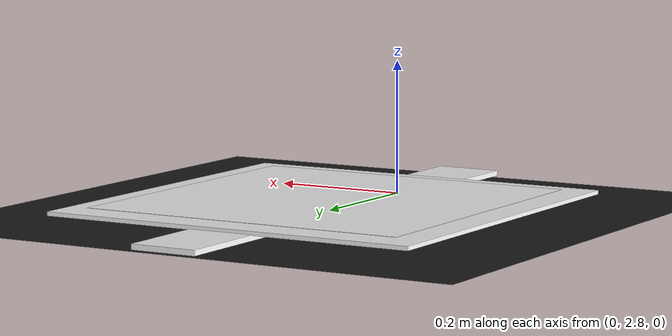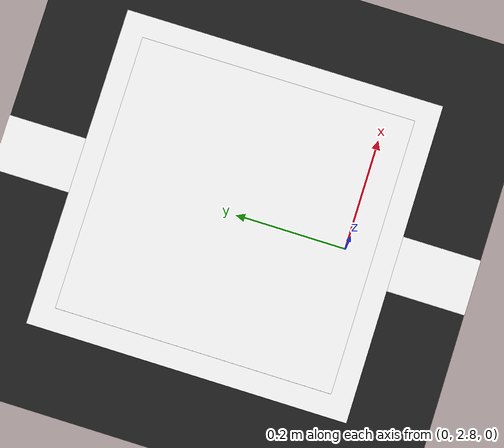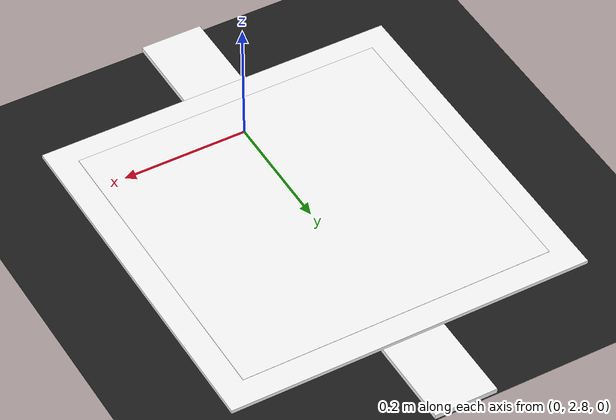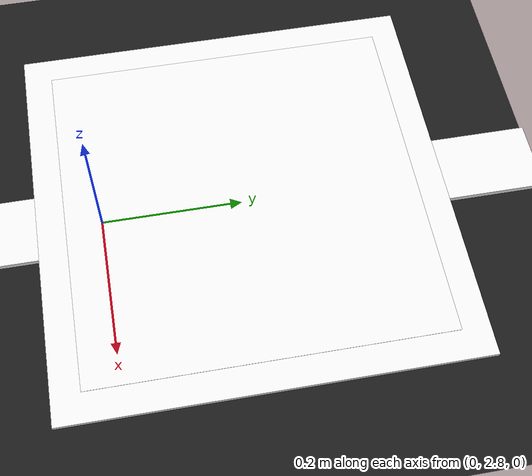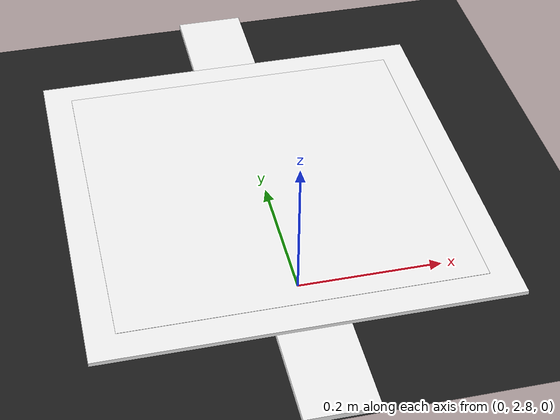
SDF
<?xml version="1.0" ?>
<sdf version="1.9">
  <model name="astroquad_vision_course">
    <static>true</static>

    <link name="course_link">
      <collision name="ground_collision">
        <geometry>
          <plane>
            <normal>0 0 1</normal>
            <size>20 20</size>
          </plane>
        </geometry>
      </collision>

      <visual name="ground_visual">
        <geometry>
          <plane>
            <normal>0 0 1</normal>
            <size>20 20</size>
          </plane>
        </geometry>
        <material>
          <ambient>0.12 0.12 0.12 1</ambient>
          <diffuse>0.12 0.12 0.12 1</diffuse>
          <specular>0.03 0.03 0.03 1</specular>
        </material>
      </visual>

      <visual name="white_line_10cm">
        <pose>0 0 0.006 0 0 0</pose>
        <geometry>
          <box>
            <size>0.10 7.0 0.008</size>
          </box>
        </geometry>
        <material>
          <ambient>1 1 1 1</ambient>
          <diffuse>1 1 1 1</diffuse>
          <emissive>0.25 0.25 0.25 1</emissive>
        </material>
      </visual>

      <visual name="marker_id1_white_backing">
        <pose>0 3.0 0.012 0 0 0</pose>
        <geometry>
          <box>
            <size>0.58 0.58 0.006</size>
          </box>
        </geometry>
        <material>
          <ambient>1 1 1 1</ambient>
          <diffuse>1 1 1 1</diffuse>
        </material>
      </visual>

      <visual name="marker_id1_texture">
        <pose>0 3.0 0.018 0 0 0</pose>
        <geometry>
          <plane>
            <normal>0 0 1</normal>
            <size>0.50 0.50</size>
          </plane>
        </geometry>
        <material>
          <ambient>1 1 1 1</ambient>
          <diffuse>1 1 1 1</diffuse>
          <specular>0 0 0 1</specular>
          <pbr>
            <metal>
              <albedo_map>materials/textures/aruco_id1.png</albedo_map>
              <roughness>1.0</roughness>
              <metalness>0.0</metalness>
            </metal>
          </pbr>
        </material>
      </visual>
    </link>
  </model>
</sdf>
